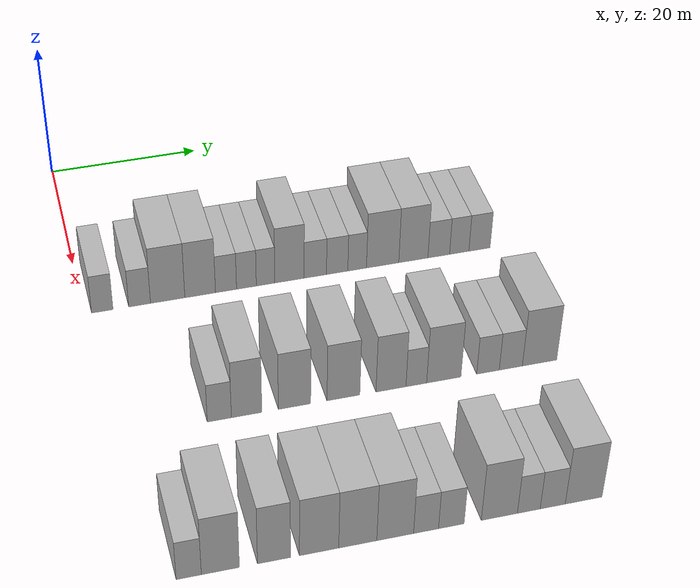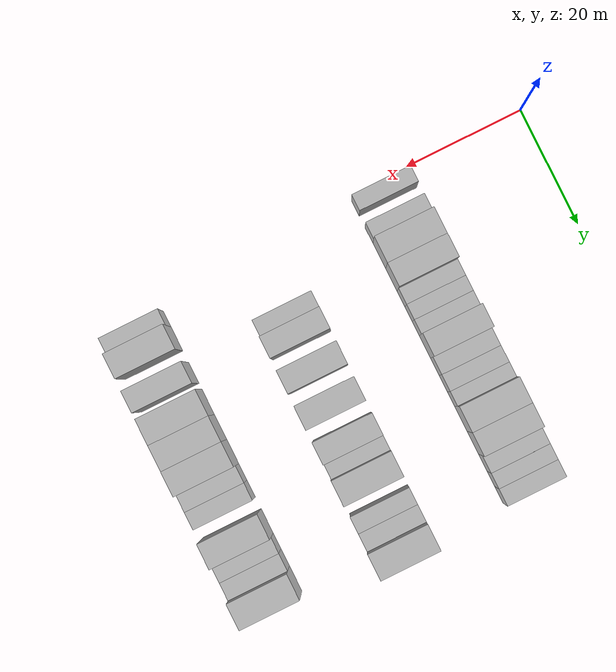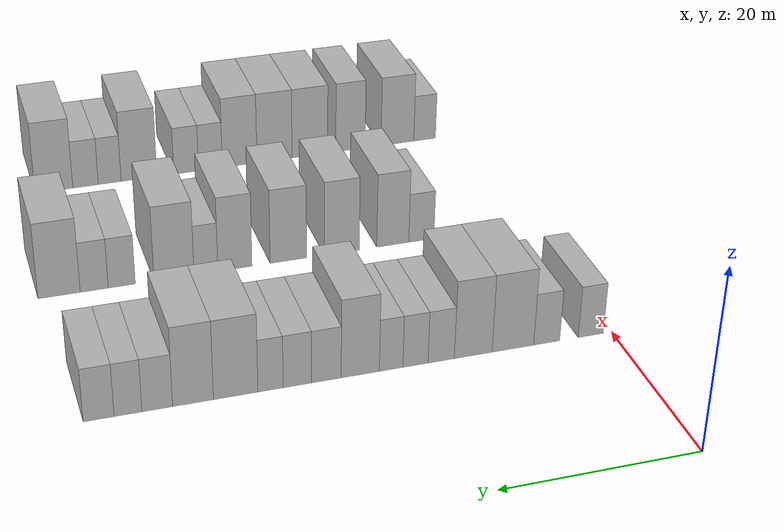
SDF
<sdf version="1.6">
 <world name="default">
  <model name="building_66">
   <static>1</static>
   <pose>25.0000 2.2780 0 0.000000 0.000000 0.000000</pose>
   <link name="link">
    <pose>0 0 3.00 0 0 0</pose>
    <collision name="collision"><geometry><box><size>10.0000 2.7241 6.0000</size></box></geometry></collision>
    <visual name="visual">
     <cast_shadows>0</cast_shadows>
     <geometry><box><size>10.0000 2.7241 6.0000</size></box></geometry>
     <material>
      <script>
       <uri>model://HANNAS_wall/materials/scripts</uri>
       <uri>model://HANNAS_wall/materials/textures</uri>
       <name>vrc/HANNAS_wall</name>
      </script>
     </material>
    </visual>
   </link>
  </model>
  <model name="building_67">
   <static>1</static>
   <pose>25.0000 7.0333 0 0.000000 0.000000 0.000000</pose>
   <link name="link">
    <pose>0 0 3.00 0 0 0</pose>
    <collision name="collision"><geometry><box><size>10.0000 2.7864 6.0000</size></box></geometry></collision>
    <visual name="visual">
     <cast_shadows>0</cast_shadows>
     <geometry><box><size>10.0000 2.7864 6.0000</size></box></geometry>
     <material>
      <script>
       <uri>model://HANNAS_wall/materials/scripts</uri>
       <uri>model://HANNAS_wall/materials/textures</uri>
       <name>vrc/HANNAS_wall</name>
      </script>
     </material>
    </visual>
   </link>
  </model>
  <model name="building_68">
   <static>1</static>
   <pose>25.0000 10.6391 0 0.000000 0.000000 0.000000</pose>
   <link name="link">
    <pose>0 0 4.50 0 0 0</pose>
    <collision name="collision"><geometry><box><size>10.0000 4.4251 9.0000</size></box></geometry></collision>
    <visual name="visual">
     <cast_shadows>0</cast_shadows>
     <geometry><box><size>10.0000 4.4251 9.0000</size></box></geometry>
     <material>
      <script>
       <uri>model://HANNAS_wall/materials/scripts</uri>
       <uri>model://HANNAS_wall/materials/textures</uri>
       <name>vrc/HANNAS_wall</name>
      </script>
     </material>
    </visual>
   </link>
  </model>
  <model name="building_69">
   <static>1</static>
   <pose>25.0000 14.8348 0 0.000000 0.000000 0.000000</pose>
   <link name="link">
    <pose>0 0 4.50 0 0 0</pose>
    <collision name="collision"><geometry><box><size>10.0000 3.9664 9.0000</size></box></geometry></collision>
    <visual name="visual">
     <cast_shadows>0</cast_shadows>
     <geometry><box><size>10.0000 3.9664 9.0000</size></box></geometry>
     <material>
      <script>
       <uri>model://HANNAS_wall/materials/scripts</uri>
       <uri>model://HANNAS_wall/materials/textures</uri>
       <name>vrc/HANNAS_wall</name>
      </script>
     </material>
    </visual>
   </link>
  </model>
  <model name="building_70">
   <static>1</static>
   <pose>25.0000 18.1874 0 0.000000 0.000000 0.000000</pose>
   <link name="link">
    <pose>0 0 3.00 0 0 0</pose>
    <collision name="collision"><geometry><box><size>10.0000 2.7388 6.0000</size></box></geometry></collision>
    <visual name="visual">
     <cast_shadows>0</cast_shadows>
     <geometry><box><size>10.0000 2.7388 6.0000</size></box></geometry>
     <material>
      <script>
       <uri>model://HANNAS_wall/materials/scripts</uri>
       <uri>model://HANNAS_wall/materials/textures</uri>
       <name>vrc/HANNAS_wall</name>
      </script>
     </material>
    </visual>
   </link>
  </model>
  <model name="building_71">
   <static>1</static>
   <pose>25.0000 20.8497 0 0.000000 0.000000 0.000000</pose>
   <link name="link">
    <pose>0 0 3.00 0 0 0</pose>
    <collision name="collision"><geometry><box><size>10.0000 2.5858 6.0000</size></box></geometry></collision>
    <visual name="visual">
     <cast_shadows>0</cast_shadows>
     <geometry><box><size>10.0000 2.5858 6.0000</size></box></geometry>
     <material>
      <script>
       <uri>model://HANNAS_wall/materials/scripts</uri>
       <uri>model://HANNAS_wall/materials/textures</uri>
       <name>vrc/HANNAS_wall</name>
      </script>
     </material>
    </visual>
   </link>
  </model>
  <model name="building_72">
   <static>1</static>
   <pose>25.0000 23.3550 0 0.000000 0.000000 0.000000</pose>
   <link name="link">
    <pose>0 0 3.00 0 0 0</pose>
    <collision name="collision"><geometry><box><size>10.0000 2.4249 6.0000</size></box></geometry></collision>
    <visual name="visual">
     <cast_shadows>0</cast_shadows>
     <geometry><box><size>10.0000 2.4249 6.0000</size></box></geometry>
     <material>
      <script>
       <uri>model://HANNAS_wall/materials/scripts</uri>
       <uri>model://HANNAS_wall/materials/textures</uri>
       <name>vrc/HANNAS_wall</name>
      </script>
     </material>
    </visual>
   </link>
  </model>
  <model name="building_73">
   <static>1</static>
   <pose>25.0000 26.5085 0 0.000000 0.000000 0.000000</pose>
   <link name="link">
    <pose>0 0 4.50 0 0 0</pose>
    <collision name="collision"><geometry><box><size>10.0000 3.8821 9.0000</size></box></geometry></collision>
    <visual name="visual">
     <cast_shadows>0</cast_shadows>
     <geometry><box><size>10.0000 3.8821 9.0000</size></box></geometry>
     <material>
      <script>
       <uri>model://HANNAS_wall/materials/scripts</uri>
       <uri>model://HANNAS_wall/materials/textures</uri>
       <name>vrc/HANNAS_wall</name>
      </script>
     </material>
    </visual>
   </link>
  </model>
  <model name="building_74">
   <static>1</static>
   <pose>25.0000 29.9336 0 0.000000 0.000000 0.000000</pose>
   <link name="link">
    <pose>0 0 3.00 0 0 0</pose>
    <collision name="collision"><geometry><box><size>10.0000 2.9679 6.0000</size></box></geometry></collision>
    <visual name="visual">
     <cast_shadows>0</cast_shadows>
     <geometry><box><size>10.0000 2.9679 6.0000</size></box></geometry>
     <material>
      <script>
       <uri>model://HANNAS_wall/materials/scripts</uri>
       <uri>model://HANNAS_wall/materials/textures</uri>
       <name>vrc/HANNAS_wall</name>
      </script>
     </material>
    </visual>
   </link>
  </model>
  <model name="building_75">
   <static>1</static>
   <pose>25.0000 32.8421 0 0.000000 0.000000 0.000000</pose>
   <link name="link">
    <pose>0 0 3.00 0 0 0</pose>
    <collision name="collision"><geometry><box><size>10.0000 2.8491 6.0000</size></box></geometry></collision>
    <visual name="visual">
     <cast_shadows>0</cast_shadows>
     <geometry><box><size>10.0000 2.8491 6.0000</size></box></geometry>
     <material>
      <script>
       <uri>model://HANNAS_wall/materials/scripts</uri>
       <uri>model://HANNAS_wall/materials/textures</uri>
       <name>vrc/HANNAS_wall</name>
      </script>
     </material>
    </visual>
   </link>
  </model>
  <model name="building_76">
   <static>1</static>
   <pose>25.0000 35.5147 0 0.000000 0.000000 0.000000</pose>
   <link name="link">
    <pose>0 0 3.00 0 0 0</pose>
    <collision name="collision"><geometry><box><size>10.0000 2.4961 6.0000</size></box></geometry></collision>
    <visual name="visual">
     <cast_shadows>0</cast_shadows>
     <geometry><box><size>10.0000 2.4961 6.0000</size></box></geometry>
     <material>
      <script>
       <uri>model://HANNAS_wall/materials/scripts</uri>
       <uri>model://HANNAS_wall/materials/textures</uri>
       <name>vrc/HANNAS_wall</name>
      </script>
     </material>
    </visual>
   </link>
  </model>
  <model name="building_77">
   <static>1</static>
   <pose>25.0000 38.9422 0 0.000000 0.000000 0.000000</pose>
   <link name="link">
    <pose>0 0 4.50 0 0 0</pose>
    <collision name="collision"><geometry><box><size>10.0000 4.3588 9.0000</size></box></geometry></collision>
    <visual name="visual">
     <cast_shadows>0</cast_shadows>
     <geometry><box><size>10.0000 4.3588 9.0000</size></box></geometry>
     <material>
      <script>
       <uri>model://HANNAS_wall/materials/scripts</uri>
       <uri>model://HANNAS_wall/materials/textures</uri>
       <name>vrc/HANNAS_wall</name>
      </script>
     </material>
    </visual>
   </link>
  </model>
  <model name="building_78">
   <static>1</static>
   <pose>25.0000 43.1015 0 0.000000 0.000000 0.000000</pose>
   <link name="link">
    <pose>0 0 4.50 0 0 0</pose>
    <collision name="collision"><geometry><box><size>10.0000 3.9598 9.0000</size></box></geometry></collision>
    <visual name="visual">
     <cast_shadows>0</cast_shadows>
     <geometry><box><size>10.0000 3.9598 9.0000</size></box></geometry>
     <material>
      <script>
       <uri>model://HANNAS_wall/materials/scripts</uri>
       <uri>model://HANNAS_wall/materials/textures</uri>
       <name>vrc/HANNAS_wall</name>
      </script>
     </material>
    </visual>
   </link>
  </model>
  <model name="building_79">
   <static>1</static>
   <pose>25.0000 46.5578 0 0.000000 0.000000 0.000000</pose>
   <link name="link">
    <pose>0 0 3.00 0 0 0</pose>
    <collision name="collision"><geometry><box><size>10.0000 2.9530 6.0000</size></box></geometry></collision>
    <visual name="visual">
     <cast_shadows>0</cast_shadows>
     <geometry><box><size>10.0000 2.9530 6.0000</size></box></geometry>
     <material>
      <script>
       <uri>model://HANNAS_wall/materials/scripts</uri>
       <uri>model://HANNAS_wall/materials/textures</uri>
       <name>vrc/HANNAS_wall</name>
      </script>
     </material>
    </visual>
   </link>
  </model>
  <model name="building_80">
   <static>1</static>
   <pose>25.0000 49.3571 0 0.000000 0.000000 0.000000</pose>
   <link name="link">
    <pose>0 0 3.00 0 0 0</pose>
    <collision name="collision"><geometry><box><size>10.0000 2.6455 6.0000</size></box></geometry></collision>
    <visual name="visual">
     <cast_shadows>0</cast_shadows>
     <geometry><box><size>10.0000 2.6455 6.0000</size></box></geometry>
     <material>
      <script>
       <uri>model://HANNAS_wall/materials/scripts</uri>
       <uri>model://HANNAS_wall/materials/textures</uri>
       <name>vrc/HANNAS_wall</name>
      </script>
     </material>
    </visual>
   </link>
  </model>
  <model name="building_81">
   <static>1</static>
   <pose>25.0000 52.1397 0 0.000000 0.000000 0.000000</pose>
   <link name="link">
    <pose>0 0 3.00 0 0 0</pose>
    <collision name="collision"><geometry><box><size>10.0000 2.9199 6.0000</size></box></geometry></collision>
    <visual name="visual">
     <cast_shadows>0</cast_shadows>
     <geometry><box><size>10.0000 2.9199 6.0000</size></box></geometry>
     <material>
      <script>
       <uri>model://HANNAS_wall/materials/scripts</uri>
       <uri>model://HANNAS_wall/materials/textures</uri>
       <name>vrc/HANNAS_wall</name>
      </script>
     </material>
    </visual>
   </link>
  </model>
  <model name="building_191">
   <static>1</static>
   <pose>47.0000 12.6779 0 0.000000 0.000000 0.000000</pose>
   <link name="link">
    <pose>0 0 3.00 0 0 0</pose>
    <collision name="collision"><geometry><box><size>10.0000 2.8985 6.0000</size></box></geometry></collision>
    <visual name="visual">
     <cast_shadows>0</cast_shadows>
     <geometry><box><size>10.0000 2.8985 6.0000</size></box></geometry>
     <material>
      <script>
       <uri>model://HANNAS_wall/materials/scripts</uri>
       <uri>model://HANNAS_wall/materials/textures</uri>
       <name>vrc/HANNAS_wall</name>
      </script>
     </material>
    </visual>
   </link>
  </model>
  <model name="building_192">
   <static>1</static>
   <pose>47.0000 15.9641 0 0.000000 0.000000 0.000000</pose>
   <link name="link">
    <pose>0 0 4.50 0 0 0</pose>
    <collision name="collision"><geometry><box><size>10.0000 3.6740 9.0000</size></box></geometry></collision>
    <visual name="visual">
     <cast_shadows>0</cast_shadows>
     <geometry><box><size>10.0000 3.6740 9.0000</size></box></geometry>
     <material>
      <script>
       <uri>model://HANNAS_wall/materials/scripts</uri>
       <uri>model://HANNAS_wall/materials/textures</uri>
       <name>vrc/HANNAS_wall</name>
      </script>
     </material>
    </visual>
   </link>
  </model>
  <model name="building_193">
   <static>1</static>
   <pose>47.0000 21.7699 0 0.000000 0.000000 0.000000</pose>
   <link name="link">
    <pose>0 0 4.50 0 0 0</pose>
    <collision name="collision"><geometry><box><size>10.0000 3.9375 9.0000</size></box></geometry></collision>
    <visual name="visual">
     <cast_shadows>0</cast_shadows>
     <geometry><box><size>10.0000 3.9375 9.0000</size></box></geometry>
     <material>
      <script>
       <uri>model://HANNAS_wall/materials/scripts</uri>
       <uri>model://HANNAS_wall/materials/textures</uri>
       <name>vrc/HANNAS_wall</name>
      </script>
     </material>
    </visual>
   </link>
  </model>
  <model name="building_194">
   <static>1</static>
   <pose>47.0000 27.7640 0 0.000000 0.000000 0.000000</pose>
   <link name="link">
    <pose>0 0 4.50 0 0 0</pose>
    <collision name="collision"><geometry><box><size>10.0000 4.0508 9.0000</size></box></geometry></collision>
    <visual name="visual">
     <cast_shadows>0</cast_shadows>
     <geometry><box><size>10.0000 4.0508 9.0000</size></box></geometry>
     <material>
      <script>
       <uri>model://HANNAS_wall/materials/scripts</uri>
       <uri>model://HANNAS_wall/materials/textures</uri>
       <name>vrc/HANNAS_wall</name>
      </script>
     </material>
    </visual>
   </link>
  </model>
  <model name="building_195">
   <static>1</static>
   <pose>47.0000 33.6591 0 0.000000 0.000000 0.000000</pose>
   <link name="link">
    <pose>0 0 4.50 0 0 0</pose>
    <collision name="collision"><geometry><box><size>10.0000 3.7395 9.0000</size></box></geometry></collision>
    <visual name="visual">
     <cast_shadows>0</cast_shadows>
     <geometry><box><size>10.0000 3.7395 9.0000</size></box></geometry>
     <material>
      <script>
       <uri>model://HANNAS_wall/materials/scripts</uri>
       <uri>model://HANNAS_wall/materials/textures</uri>
       <name>vrc/HANNAS_wall</name>
      </script>
     </material>
    </visual>
   </link>
  </model>
  <model name="building_196">
   <static>1</static>
   <pose>47.0000 36.8260 0 0.000000 0.000000 0.000000</pose>
   <link name="link">
    <pose>0 0 3.00 0 0 0</pose>
    <collision name="collision"><geometry><box><size>10.0000 2.5942 6.0000</size></box></geometry></collision>
    <visual name="visual">
     <cast_shadows>0</cast_shadows>
     <geometry><box><size>10.0000 2.5942 6.0000</size></box></geometry>
     <material>
      <script>
       <uri>model://HANNAS_wall/materials/scripts</uri>
       <uri>model://HANNAS_wall/materials/textures</uri>
       <name>vrc/HANNAS_wall</name>
      </script>
     </material>
    </visual>
   </link>
  </model>
  <model name="building_197">
   <static>1</static>
   <pose>47.0000 40.2798 0 0.000000 0.000000 0.000000</pose>
   <link name="link">
    <pose>0 0 4.50 0 0 0</pose>
    <collision name="collision"><geometry><box><size>10.0000 4.3134 9.0000</size></box></geometry></collision>
    <visual name="visual">
     <cast_shadows>0</cast_shadows>
     <geometry><box><size>10.0000 4.3134 9.0000</size></box></geometry>
     <material>
      <script>
       <uri>model://HANNAS_wall/materials/scripts</uri>
       <uri>model://HANNAS_wall/materials/textures</uri>
       <name>vrc/HANNAS_wall</name>
      </script>
     </material>
    </visual>
   </link>
  </model>
  <model name="building_198">
   <static>1</static>
   <pose>47.0000 45.8721 0 0.000000 0.000000 0.000000</pose>
   <link name="link">
    <pose>0 0 3.00 0 0 0</pose>
    <collision name="collision"><geometry><box><size>10.0000 2.8713 6.0000</size></box></geometry></collision>
    <visual name="visual">
     <cast_shadows>0</cast_shadows>
     <geometry><box><size>10.0000 2.8713 6.0000</size></box></geometry>
     <material>
      <script>
       <uri>model://HANNAS_wall/materials/scripts</uri>
       <uri>model://HANNAS_wall/materials/textures</uri>
       <name>vrc/HANNAS_wall</name>
      </script>
     </material>
    </visual>
   </link>
  </model>
  <model name="building_199">
   <static>1</static>
   <pose>47.0000 48.7853 0 0.000000 0.000000 0.000000</pose>
   <link name="link">
    <pose>0 0 3.00 0 0 0</pose>
    <collision name="collision"><geometry><box><size>10.0000 2.9551 6.0000</size></box></geometry></collision>
    <visual name="visual">
     <cast_shadows>0</cast_shadows>
     <geometry><box><size>10.0000 2.9551 6.0000</size></box></geometry>
     <material>
      <script>
       <uri>model://HANNAS_wall/materials/scripts</uri>
       <uri>model://HANNAS_wall/materials/textures</uri>
       <name>vrc/HANNAS_wall</name>
      </script>
     </material>
    </visual>
   </link>
  </model>
  <model name="building_200">
   <static>1</static>
   <pose>47.0000 52.4722 0 0.000000 0.000000 0.000000</pose>
   <link name="link">
    <pose>0 0 4.50 0 0 0</pose>
    <collision name="collision"><geometry><box><size>10.0000 4.4187 9.0000</size></box></geometry></collision>
    <visual name="visual">
     <cast_shadows>0</cast_shadows>
     <geometry><box><size>10.0000 4.4187 9.0000</size></box></geometry>
     <material>
      <script>
       <uri>model://HANNAS_wall/materials/scripts</uri>
       <uri>model://HANNAS_wall/materials/textures</uri>
       <name>vrc/HANNAS_wall</name>
      </script>
     </material>
    </visual>
   </link>
  </model>
  <model name="building_310">
   <static>1</static>
   <pose>69.0000 4.6959 0 0.000000 0.000000 0.000000</pose>
   <link name="link">
    <pose>0 0 3.00 0 0 0</pose>
    <collision name="collision"><geometry><box><size>10.0000 2.7600 6.0000</size></box></geometry></collision>
    <visual name="visual">
     <cast_shadows>0</cast_shadows>
     <geometry><box><size>10.0000 2.7600 6.0000</size></box></geometry>
     <material>
      <script>
       <uri>model://HANNAS_wall/materials/scripts</uri>
       <uri>model://HANNAS_wall/materials/textures</uri>
       <name>vrc/HANNAS_wall</name>
      </script>
     </material>
    </visual>
   </link>
  </model>
  <model name="building_311">
   <static>1</static>
   <pose>69.0000 8.1622 0 0.000000 0.000000 0.000000</pose>
   <link name="link">
    <pose>0 0 4.50 0 0 0</pose>
    <collision name="collision"><geometry><box><size>10.0000 4.1726 9.0000</size></box></geometry></collision>
    <visual name="visual">
     <cast_shadows>0</cast_shadows>
     <geometry><box><size>10.0000 4.1726 9.0000</size></box></geometry>
     <material>
      <script>
       <uri>model://HANNAS_wall/materials/scripts</uri>
       <uri>model://HANNAS_wall/materials/textures</uri>
       <name>vrc/HANNAS_wall</name>
      </script>
     </material>
    </visual>
   </link>
  </model>
  <model name="building_312">
   <static>1</static>
   <pose>69.0000 14.0821 0 0.000000 0.000000 0.000000</pose>
   <link name="link">
    <pose>0 0 4.50 0 0 0</pose>
    <collision name="collision"><geometry><box><size>10.0000 3.6672 9.0000</size></box></geometry></collision>
    <visual name="visual">
     <cast_shadows>0</cast_shadows>
     <geometry><box><size>10.0000 3.6672 9.0000</size></box></geometry>
     <material>
      <script>
       <uri>model://HANNAS_wall/materials/scripts</uri>
       <uri>model://HANNAS_wall/materials/textures</uri>
       <name>vrc/HANNAS_wall</name>
      </script>
     </material>
    </visual>
   </link>
  </model>
  <model name="building_313">
   <static>1</static>
   <pose>69.0000 19.1199 0 0.000000 0.000000 0.000000</pose>
   <link name="link">
    <pose>0 0 4.50 0 0 0</pose>
    <collision name="collision"><geometry><box><size>10.0000 4.4084 9.0000</size></box></geometry></collision>
    <visual name="visual">
     <cast_shadows>0</cast_shadows>
     <geometry><box><size>10.0000 4.4084 9.0000</size></box></geometry>
     <material>
      <script>
       <uri>model://HANNAS_wall/materials/scripts</uri>
       <uri>model://HANNAS_wall/materials/textures</uri>
       <name>vrc/HANNAS_wall</name>
      </script>
     </material>
    </visual>
   </link>
  </model>
  <model name="building_314">
   <static>1</static>
   <pose>69.0000 23.4806 0 0.000000 0.000000 0.000000</pose>
   <link name="link">
    <pose>0 0 4.50 0 0 0</pose>
    <collision name="collision"><geometry><box><size>10.0000 4.3130 9.0000</size></box></geometry></collision>
    <visual name="visual">
     <cast_shadows>0</cast_shadows>
     <geometry><box><size>10.0000 4.3130 9.0000</size></box></geometry>
     <material>
      <script>
       <uri>model://HANNAS_wall/materials/scripts</uri>
       <uri>model://HANNAS_wall/materials/textures</uri>
       <name>vrc/HANNAS_wall</name>
      </script>
     </material>
    </visual>
   </link>
  </model>
  <model name="building_315">
   <static>1</static>
   <pose>69.0000 27.7359 0 0.000000 0.000000 0.000000</pose>
   <link name="link">
    <pose>0 0 4.50 0 0 0</pose>
    <collision name="collision"><geometry><box><size>10.0000 4.1976 9.0000</size></box></geometry></collision>
    <visual name="visual">
     <cast_shadows>0</cast_shadows>
     <geometry><box><size>10.0000 4.1976 9.0000</size></box></geometry>
     <material>
      <script>
       <uri>model://HANNAS_wall/materials/scripts</uri>
       <uri>model://HANNAS_wall/materials/textures</uri>
       <name>vrc/HANNAS_wall</name>
      </script>
     </material>
    </visual>
   </link>
  </model>
  <model name="building_316">
   <static>1</static>
   <pose>69.0000 31.2672 0 0.000000 0.000000 0.000000</pose>
   <link name="link">
    <pose>0 0 3.00 0 0 0</pose>
    <collision name="collision"><geometry><box><size>10.0000 2.8651 6.0000</size></box></geometry></collision>
    <visual name="visual">
     <cast_shadows>0</cast_shadows>
     <geometry><box><size>10.0000 2.8651 6.0000</size></box></geometry>
     <material>
      <script>
       <uri>model://HANNAS_wall/materials/scripts</uri>
       <uri>model://HANNAS_wall/materials/textures</uri>
       <name>vrc/HANNAS_wall</name>
      </script>
     </material>
    </visual>
   </link>
  </model>
  <model name="building_317">
   <static>1</static>
   <pose>69.0000 34.1753 0 0.000000 0.000000 0.000000</pose>
   <link name="link">
    <pose>0 0 3.00 0 0 0</pose>
    <collision name="collision"><geometry><box><size>10.0000 2.9511 6.0000</size></box></geometry></collision>
    <visual name="visual">
     <cast_shadows>0</cast_shadows>
     <geometry><box><size>10.0000 2.9511 6.0000</size></box></geometry>
     <material>
      <script>
       <uri>model://HANNAS_wall/materials/scripts</uri>
       <uri>model://HANNAS_wall/materials/textures</uri>
       <name>vrc/HANNAS_wall</name>
      </script>
     </material>
    </visual>
   </link>
  </model>
  <model name="building_318">
   <static>1</static>
   <pose>69.0000 39.7602 0 0.000000 0.000000 0.000000</pose>
   <link name="link">
    <pose>0 0 4.50 0 0 0</pose>
    <collision name="collision"><geometry><box><size>10.0000 4.2187 9.0000</size></box></geometry></collision>
    <visual name="visual">
     <cast_shadows>0</cast_shadows>
     <geometry><box><size>10.0000 4.2187 9.0000</size></box></geometry>
     <material>
      <script>
       <uri>model://HANNAS_wall/materials/scripts</uri>
       <uri>model://HANNAS_wall/materials/textures</uri>
       <name>vrc/HANNAS_wall</name>
      </script>
     </material>
    </visual>
   </link>
  </model>
  <model name="building_319">
   <static>1</static>
   <pose>69.0000 43.2076 0 0.000000 0.000000 0.000000</pose>
   <link name="link">
    <pose>0 0 3.00 0 0 0</pose>
    <collision name="collision"><geometry><box><size>10.0000 2.6763 6.0000</size></box></geometry></collision>
    <visual name="visual">
     <cast_shadows>0</cast_shadows>
     <geometry><box><size>10.0000 2.6763 6.0000</size></box></geometry>
     <material>
      <script>
       <uri>model://HANNAS_wall/materials/scripts</uri>
       <uri>model://HANNAS_wall/materials/textures</uri>
       <name>vrc/HANNAS_wall</name>
      </script>
     </material>
    </visual>
   </link>
  </model>
  <model name="building_320">
   <static>1</static>
   <pose>69.0000 46.0286 0 0.000000 0.000000 0.000000</pose>
   <link name="link">
    <pose>0 0 3.00 0 0 0</pose>
    <collision name="collision"><geometry><box><size>10.0000 2.9657 6.0000</size></box></geometry></collision>
    <visual name="visual">
     <cast_shadows>0</cast_shadows>
     <geometry><box><size>10.0000 2.9657 6.0000</size></box></geometry>
     <material>
      <script>
       <uri>model://HANNAS_wall/materials/scripts</uri>
       <uri>model://HANNAS_wall/materials/textures</uri>
       <name>vrc/HANNAS_wall</name>
      </script>
     </material>
    </visual>
   </link>
  </model>
  <model name="building_321">
   <static>1</static>
   <pose>69.0000 49.6975 0 0.000000 0.000000 0.000000</pose>
   <link name="link">
    <pose>0 0 4.50 0 0 0</pose>
    <collision name="collision"><geometry><box><size>10.0000 4.3722 9.0000</size></box></geometry></collision>
    <visual name="visual">
     <cast_shadows>0</cast_shadows>
     <geometry><box><size>10.0000 4.3722 9.0000</size></box></geometry>
     <material>
      <script>
       <uri>model://HANNAS_wall/materials/scripts</uri>
       <uri>model://HANNAS_wall/materials/textures</uri>
       <name>vrc/HANNAS_wall</name>
      </script>
     </material>
    </visual>
   </link>
  </model>
 </world>
</sdf>
